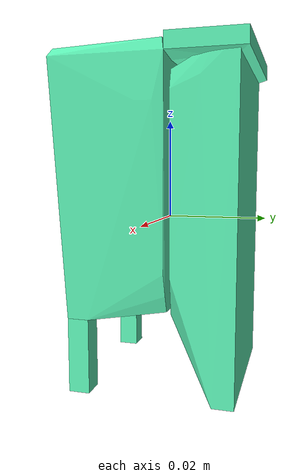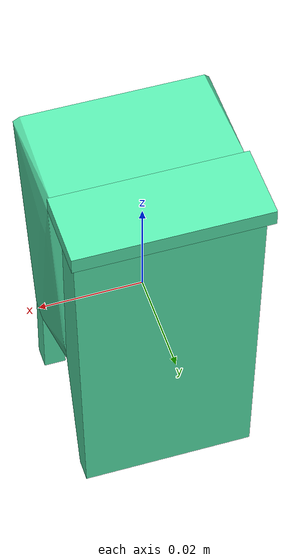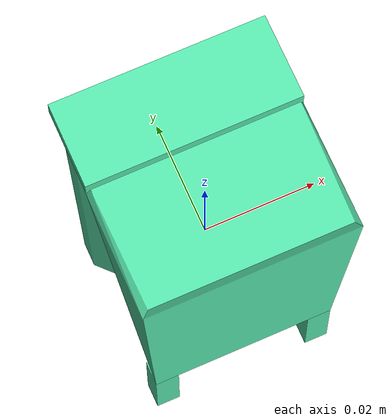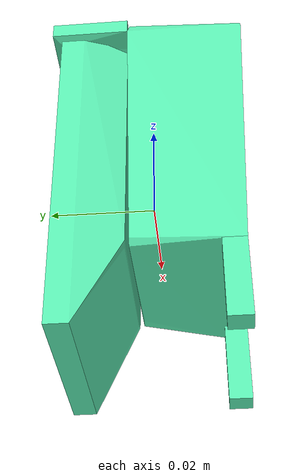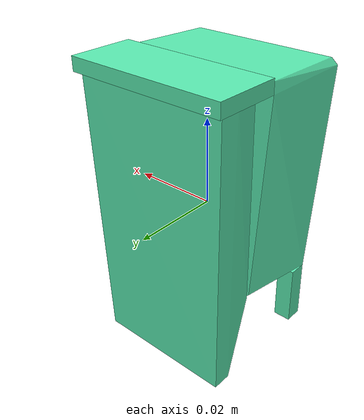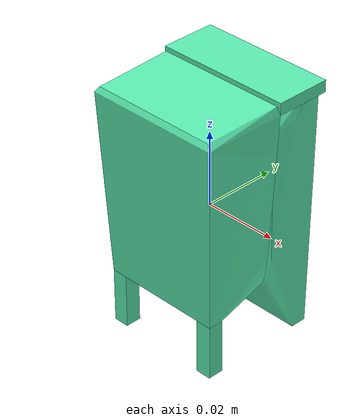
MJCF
<mujoco model="shapenetsem25">
  <asset>
    <mesh file="meshes/shapenetsem25/shapenetsem25_0.stl" name="shapenetsem25_0" scale="0.9 0.9 0.9"/>
    <mesh file="meshes/shapenetsem25/shapenetsem25_1.stl" name="shapenetsem25_1" scale="0.9 0.9 0.9"/>
    <mesh file="meshes/shapenetsem25/shapenetsem25_2.stl" name="shapenetsem25_2" scale="0.9 0.9 0.9"/>
    <mesh file="meshes/shapenetsem25/shapenetsem25_3.stl" name="shapenetsem25_3" scale="0.9 0.9 0.9"/>
    <mesh file="meshes/shapenetsem25/shapenetsem25_4.stl" name="shapenetsem25_4" scale="0.9 0.9 0.9"/>
    <texture file="../textures/texture25-0.png" type="2d" name="tex-sem25"/>
    <material name="sem25" reflectance="0.7" texrepeat="90 90" texture="tex-sem25" texuniform="true"/>
  </asset>
  <worldbody>
    <body>
      <body name="collision">
        <geom pos="0 0 0" mesh="shapenetsem25_0" type="mesh" solimp="0.998 0.998 0.001" solref="0.001 1" density="100" friction="0.95 0.3 0.1" rgba="0.35 0.92 0.69 1" group="1" condim="4"/>
        <geom pos="0 0 0" mesh="shapenetsem25_1" type="mesh" solimp="0.998 0.998 0.001" solref="0.001 1" density="100" friction="0.95 0.3 0.1" rgba="0.35 0.92 0.69 1" group="1" condim="4"/>
        <geom pos="0 0 0" mesh="shapenetsem25_2" type="mesh" solimp="0.998 0.998 0.001" solref="0.001 1" density="100" friction="0.95 0.3 0.1" rgba="0.35 0.92 0.69 1" group="1" condim="4"/>
        <geom pos="0 0 0" mesh="shapenetsem25_3" type="mesh" solimp="0.998 0.998 0.001" solref="0.001 1" density="100" friction="0.95 0.3 0.1" rgba="0.35 0.92 0.69 1" group="1" condim="4"/>
        <geom pos="0 0 0" mesh="shapenetsem25_4" type="mesh" solimp="0.998 0.998 0.001" solref="0.001 1" density="100" friction="0.95 0.3 0.1" rgba="0.35 0.92 0.69 1" group="1" condim="4"/>
      </body>
      <body name="visual">
        <geom pos="0 0 0" mesh="shapenetsem25_0" type="mesh" rgba="0 1 0 1" conaffinity="0" contype="0" group="0" mass="0.0001"/>
        <geom pos="0 0 0" mesh="shapenetsem25_1" type="mesh" rgba="0 1 0 1" conaffinity="0" contype="0" group="0" mass="0.0001"/>
        <geom pos="0 0 0" mesh="shapenetsem25_2" type="mesh" rgba="0 1 0 1" conaffinity="0" contype="0" group="0" mass="0.0001"/>
        <geom pos="0 0 0" mesh="shapenetsem25_3" type="mesh" rgba="0 1 0 1" conaffinity="0" contype="0" group="0" mass="0.0001"/>
        <geom pos="0 0 0" mesh="shapenetsem25_4" type="mesh" rgba="0 1 0 1" conaffinity="0" contype="0" group="0" mass="0.0001"/>
      </body>
      <site rgba="0 0 0 0" size="0.005" pos="0 0 -0.06" name="bottom_site"/>
      <site rgba="0 0 0 0" size="0.005" pos="0 0 0.04" name="top_site"/>
      <site rgba="0 0 0 0" size="0.005" pos="0.025 0.025 0" name="horizontal_radius_site"/>
    </body>
  </worldbody>
</mujoco>
